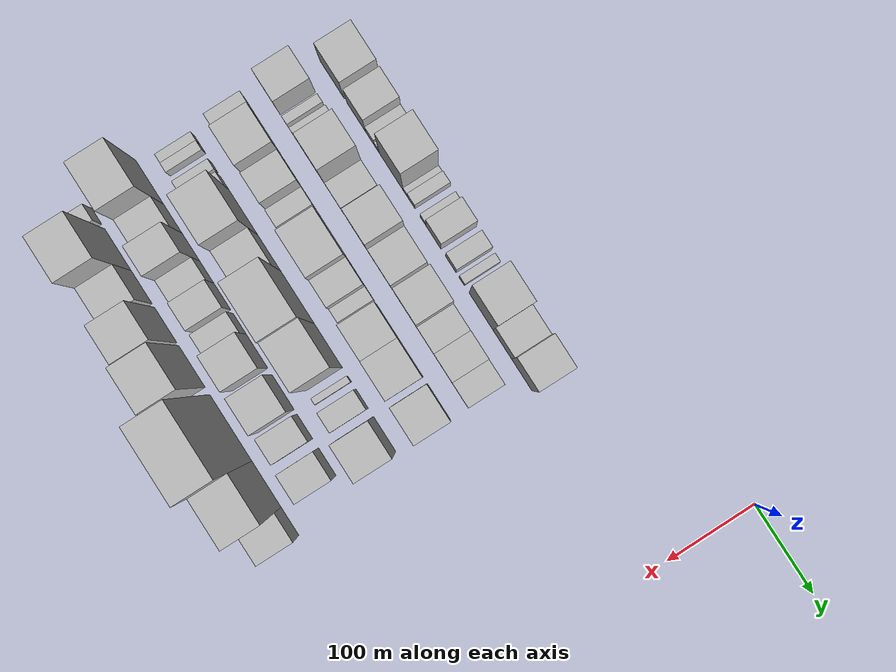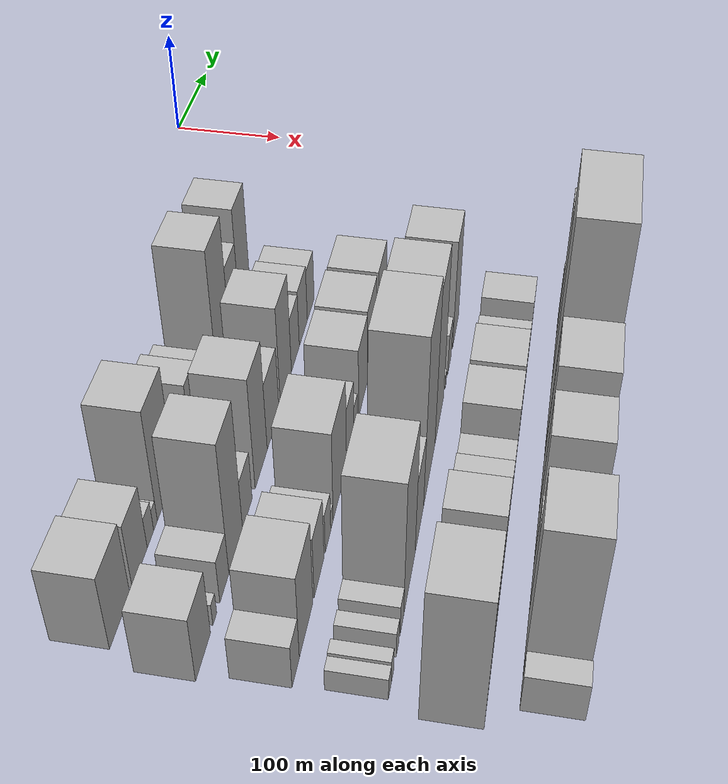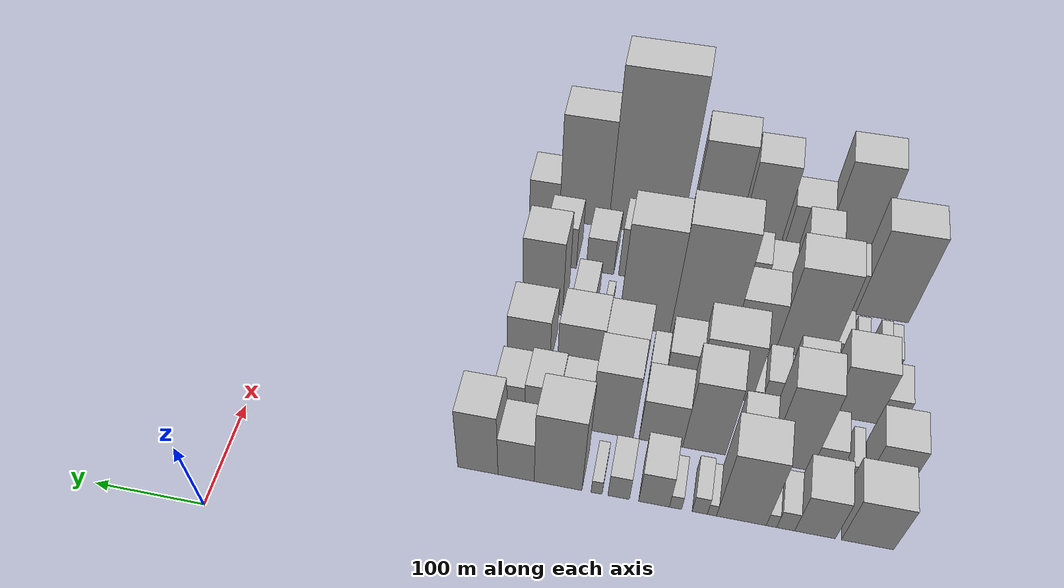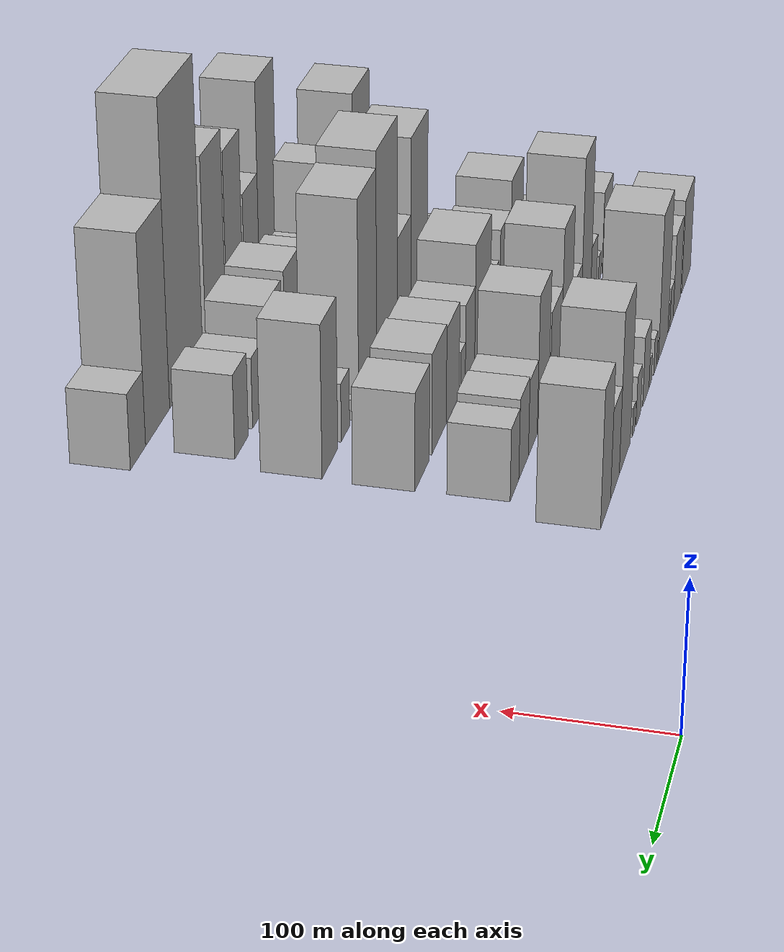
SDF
<sdf version="1.6">
 <world name="default">
  <model name="building_11">
   <static>1</static>
   <pose>100.0000 -558.2118 0 0.000000 0.000000 0.000000</pose>
   <link name="link">
    <pose>0 0 36.00 0 0 0</pose>
    <collision name="collision"><geometry><box><size>40.0000 42.9881 72.0000</size></box></geometry></collision>
    <visual name="visual">
     <cast_shadows>0</cast_shadows>
     <geometry><box><size>40.0000 42.9881 72.0000</size></box></geometry>
     <material>
      <script>
       <uri>model://HANNAS_wall/materials/scripts</uri>
       <uri>model://HANNAS_wall/materials/textures</uri>
       <name>vrc/HANNAS_wall</name>
      </script>
     </material>
    </visual>
   </link>
  </model>
  <model name="building_12">
   <static>1</static>
   <pose>100.0000 -514.8309 0 0.000000 0.000000 0.000000</pose>
   <link name="link">
    <pose>0 0 31.50 0 0 0</pose>
    <collision name="collision"><geometry><box><size>40.0000 33.7736 63.0000</size></box></geometry></collision>
    <visual name="visual">
     <cast_shadows>0</cast_shadows>
     <geometry><box><size>40.0000 33.7736 63.0000</size></box></geometry>
     <material>
      <script>
       <uri>model://HANNAS_wall/materials/scripts</uri>
       <uri>model://HANNAS_wall/materials/textures</uri>
       <name>vrc/HANNAS_wall</name>
      </script>
     </material>
    </visual>
   </link>
  </model>
  <model name="building_13">
   <static>1</static>
   <pose>100.0000 -490.3333 0 0.000000 0.000000 0.000000</pose>
   <link name="link">
    <pose>0 0 15.00 0 0 0</pose>
    <collision name="collision"><geometry><box><size>40.0000 15.2217 30.0000</size></box></geometry></collision>
    <visual name="visual">
     <cast_shadows>0</cast_shadows>
     <geometry><box><size>40.0000 15.2217 30.0000</size></box></geometry>
     <material>
      <script>
       <uri>model://HANNAS_wall/materials/scripts</uri>
       <uri>model://HANNAS_wall/materials/textures</uri>
       <name>vrc/HANNAS_wall</name>
      </script>
     </material>
    </visual>
   </link>
  </model>
  <model name="building_14">
   <static>1</static>
   <pose>100.0000 -478.3659 0 0.000000 0.000000 0.000000</pose>
   <link name="link">
    <pose>0 0 10.50 0 0 0</pose>
    <collision name="collision"><geometry><box><size>40.0000 8.7132 21.0000</size></box></geometry></collision>
    <visual name="visual">
     <cast_shadows>0</cast_shadows>
     <geometry><box><size>40.0000 8.7132 21.0000</size></box></geometry>
     <material>
      <script>
       <uri>model://HANNAS_wall/materials/scripts</uri>
       <uri>model://HANNAS_wall/materials/textures</uri>
       <name>vrc/HANNAS_wall</name>
      </script>
     </material>
    </visual>
   </link>
  </model>
  <model name="building_15">
   <static>1</static>
   <pose>100.0000 -452.8902 0 0.000000 0.000000 0.000000</pose>
   <link name="link">
    <pose>0 0 54.00 0 0 0</pose>
    <collision name="collision"><geometry><box><size>40.0000 42.2380 108.0000</size></box></geometry></collision>
    <visual name="visual">
     <cast_shadows>0</cast_shadows>
     <geometry><box><size>40.0000 42.2380 108.0000</size></box></geometry>
     <material>
      <script>
       <uri>model://HANNAS_wall/materials/scripts</uri>
       <uri>model://HANNAS_wall/materials/textures</uri>
       <name>vrc/HANNAS_wall</name>
      </script>
     </material>
    </visual>
   </link>
  </model>
  <model name="building_16">
   <static>1</static>
   <pose>100.0000 -427.9753 0 0.000000 0.000000 0.000000</pose>
   <link name="link">
    <pose>0 0 9.00 0 0 0</pose>
    <collision name="collision"><geometry><box><size>40.0000 7.5918 18.0000</size></box></geometry></collision>
    <visual name="visual">
     <cast_shadows>0</cast_shadows>
     <geometry><box><size>40.0000 7.5918 18.0000</size></box></geometry>
     <material>
      <script>
       <uri>model://HANNAS_wall/materials/scripts</uri>
       <uri>model://HANNAS_wall/materials/textures</uri>
       <name>vrc/HANNAS_wall</name>
      </script>
     </material>
    </visual>
   </link>
  </model>
  <model name="building_17">
   <static>1</static>
   <pose>100.0000 -417.6089 0 0.000000 0.000000 0.000000</pose>
   <link name="link">
    <pose>0 0 13.50 0 0 0</pose>
    <collision name="collision"><geometry><box><size>40.0000 13.1411 27.0000</size></box></geometry></collision>
    <visual name="visual">
     <cast_shadows>0</cast_shadows>
     <geometry><box><size>40.0000 13.1411 27.0000</size></box></geometry>
     <material>
      <script>
       <uri>model://HANNAS_wall/materials/scripts</uri>
       <uri>model://HANNAS_wall/materials/textures</uri>
       <name>vrc/HANNAS_wall</name>
      </script>
     </material>
    </visual>
   </link>
  </model>
  <model name="building_18">
   <static>1</static>
   <pose>100.0000 -396.8019 0 0.000000 0.000000 0.000000</pose>
   <link name="link">
    <pose>0 0 10.50 0 0 0</pose>
    <collision name="collision"><geometry><box><size>40.0000 10.4727 21.0000</size></box></geometry></collision>
    <visual name="visual">
     <cast_shadows>0</cast_shadows>
     <geometry><box><size>40.0000 10.4727 21.0000</size></box></geometry>
     <material>
      <script>
       <uri>model://HANNAS_wall/materials/scripts</uri>
       <uri>model://HANNAS_wall/materials/textures</uri>
       <name>vrc/HANNAS_wall</name>
      </script>
     </material>
    </visual>
   </link>
  </model>
  <model name="building_19">
   <static>1</static>
   <pose>100.0000 -378.2339 0 0.000000 0.000000 0.000000</pose>
   <link name="link">
    <pose>0 0 25.50 0 0 0</pose>
    <collision name="collision"><geometry><box><size>40.0000 26.6633 51.0000</size></box></geometry></collision>
    <visual name="visual">
     <cast_shadows>0</cast_shadows>
     <geometry><box><size>40.0000 26.6633 51.0000</size></box></geometry>
     <material>
      <script>
       <uri>model://HANNAS_wall/materials/scripts</uri>
       <uri>model://HANNAS_wall/materials/textures</uri>
       <name>vrc/HANNAS_wall</name>
      </script>
     </material>
    </visual>
   </link>
  </model>
  <model name="building_20">
   <static>1</static>
   <pose>100.0000 -347.5182 0 0.000000 0.000000 0.000000</pose>
   <link name="link">
    <pose>0 0 18.00 0 0 0</pose>
    <collision name="collision"><geometry><box><size>40.0000 18.7680 36.0000</size></box></geometry></collision>
    <visual name="visual">
     <cast_shadows>0</cast_shadows>
     <geometry><box><size>40.0000 18.7680 36.0000</size></box></geometry>
     <material>
      <script>
       <uri>model://HANNAS_wall/materials/scripts</uri>
       <uri>model://HANNAS_wall/materials/textures</uri>
       <name>vrc/HANNAS_wall</name>
      </script>
     </material>
    </visual>
   </link>
  </model>
  <model name="building_21">
   <static>1</static>
   <pose>100.0000 -328.2891 0 0.000000 0.000000 0.000000</pose>
   <link name="link">
    <pose>0 0 10.50 0 0 0</pose>
    <collision name="collision"><geometry><box><size>40.0000 9.6902 21.0000</size></box></geometry></collision>
    <visual name="visual">
     <cast_shadows>0</cast_shadows>
     <geometry><box><size>40.0000 9.6902 21.0000</size></box></geometry>
     <material>
      <script>
       <uri>model://HANNAS_wall/materials/scripts</uri>
       <uri>model://HANNAS_wall/materials/textures</uri>
       <name>vrc/HANNAS_wall</name>
      </script>
     </material>
    </visual>
   </link>
  </model>
  <model name="building_22">
   <static>1</static>
   <pose>100.0000 -294.3488 0 0.000000 0.000000 0.000000</pose>
   <link name="link">
    <pose>0 0 57.00 0 0 0</pose>
    <collision name="collision"><geometry><box><size>40.0000 42.1904 114.0000</size></box></geometry></collision>
    <visual name="visual">
     <cast_shadows>0</cast_shadows>
     <geometry><box><size>40.0000 42.1904 114.0000</size></box></geometry>
     <material>
      <script>
       <uri>model://HANNAS_wall/materials/scripts</uri>
       <uri>model://HANNAS_wall/materials/textures</uri>
       <name>vrc/HANNAS_wall</name>
      </script>
     </material>
    </visual>
   </link>
  </model>
  <model name="building_23">
   <static>1</static>
   <pose>100.0000 -257.0880 0 0.000000 0.000000 0.000000</pose>
   <link name="link">
    <pose>0 0 31.50 0 0 0</pose>
    <collision name="collision"><geometry><box><size>40.0000 32.3312 63.0000</size></box></geometry></collision>
    <visual name="visual">
     <cast_shadows>0</cast_shadows>
     <geometry><box><size>40.0000 32.3312 63.0000</size></box></geometry>
     <material>
      <script>
       <uri>model://HANNAS_wall/materials/scripts</uri>
       <uri>model://HANNAS_wall/materials/textures</uri>
       <name>vrc/HANNAS_wall</name>
      </script>
     </material>
    </visual>
   </link>
  </model>
  <model name="building_24">
   <static>1</static>
   <pose>100.0000 -222.8376 0 0.000000 0.000000 0.000000</pose>
   <link name="link">
    <pose>0 0 48.00 0 0 0</pose>
    <collision name="collision"><geometry><box><size>40.0000 36.1696 96.0000</size></box></geometry></collision>
    <visual name="visual">
     <cast_shadows>0</cast_shadows>
     <geometry><box><size>40.0000 36.1696 96.0000</size></box></geometry>
     <material>
      <script>
       <uri>model://HANNAS_wall/materials/scripts</uri>
       <uri>model://HANNAS_wall/materials/textures</uri>
       <name>vrc/HANNAS_wall</name>
      </script>
     </material>
    </visual>
   </link>
  </model>
  <model name="building_66">
   <static>1</static>
   <pose>160.0000 -574.7486 0 0.000000 0.000000 0.000000</pose>
   <link name="link">
    <pose>0 0 31.50 0 0 0</pose>
    <collision name="collision"><geometry><box><size>40.0000 36.1169 63.0000</size></box></geometry></collision>
    <visual name="visual">
     <cast_shadows>0</cast_shadows>
     <geometry><box><size>40.0000 36.1169 63.0000</size></box></geometry>
     <material>
      <script>
       <uri>model://HANNAS_wall/materials/scripts</uri>
       <uri>model://HANNAS_wall/materials/textures</uri>
       <name>vrc/HANNAS_wall</name>
      </script>
     </material>
    </visual>
   </link>
  </model>
  <model name="building_67">
   <static>1</static>
   <pose>160.0000 -545.8588 0 0.000000 0.000000 0.000000</pose>
   <link name="link">
    <pose>0 0 10.50 0 0 0</pose>
    <collision name="collision"><geometry><box><size>40.0000 9.6627 21.0000</size></box></geometry></collision>
    <visual name="visual">
     <cast_shadows>0</cast_shadows>
     <geometry><box><size>40.0000 9.6627 21.0000</size></box></geometry>
     <material>
      <script>
       <uri>model://HANNAS_wall/materials/scripts</uri>
       <uri>model://HANNAS_wall/materials/textures</uri>
       <name>vrc/HANNAS_wall</name>
      </script>
     </material>
    </visual>
   </link>
  </model>
  <model name="building_68">
   <static>1</static>
   <pose>160.0000 -521.0621 0 0.000000 0.000000 0.000000</pose>
   <link name="link">
    <pose>0 0 21.00 0 0 0</pose>
    <collision name="collision"><geometry><box><size>40.0000 23.9307 42.0000</size></box></geometry></collision>
    <visual name="visual">
     <cast_shadows>0</cast_shadows>
     <geometry><box><size>40.0000 23.9307 42.0000</size></box></geometry>
     <material>
      <script>
       <uri>model://HANNAS_wall/materials/scripts</uri>
       <uri>model://HANNAS_wall/materials/textures</uri>
       <name>vrc/HANNAS_wall</name>
      </script>
     </material>
    </visual>
   </link>
  </model>
  <model name="building_69">
   <static>1</static>
   <pose>160.0000 -489.9883 0 0.000000 0.000000 0.000000</pose>
   <link name="link">
    <pose>0 0 63.00 0 0 0</pose>
    <collision name="collision"><geometry><box><size>40.0000 38.2169 126.0000</size></box></geometry></collision>
    <visual name="visual">
     <cast_shadows>0</cast_shadows>
     <geometry><box><size>40.0000 38.2169 126.0000</size></box></geometry>
     <material>
      <script>
       <uri>model://HANNAS_wall/materials/scripts</uri>
       <uri>model://HANNAS_wall/materials/textures</uri>
       <name>vrc/HANNAS_wall</name>
      </script>
     </material>
    </visual>
   </link>
  </model>
  <model name="building_70">
   <static>1</static>
   <pose>160.0000 -456.9344 0 0.000000 0.000000 0.000000</pose>
   <link name="link">
    <pose>0 0 24.00 0 0 0</pose>
    <collision name="collision"><geometry><box><size>40.0000 27.8911 48.0000</size></box></geometry></collision>
    <visual name="visual">
     <cast_shadows>0</cast_shadows>
     <geometry><box><size>40.0000 27.8911 48.0000</size></box></geometry>
     <material>
      <script>
       <uri>model://HANNAS_wall/materials/scripts</uri>
       <uri>model://HANNAS_wall/materials/textures</uri>
       <name>vrc/HANNAS_wall</name>
      </script>
     </material>
    </visual>
   </link>
  </model>
  <model name="building_71">
   <static>1</static>
   <pose>160.0000 -414.9935 0 0.000000 0.000000 0.000000</pose>
   <link name="link">
    <pose>0 0 54.00 0 0 0</pose>
    <collision name="collision"><geometry><box><size>40.0000 37.9908 108.0000</size></box></geometry></collision>
    <visual name="visual">
     <cast_shadows>0</cast_shadows>
     <geometry><box><size>40.0000 37.9908 108.0000</size></box></geometry>
     <material>
      <script>
       <uri>model://HANNAS_wall/materials/scripts</uri>
       <uri>model://HANNAS_wall/materials/textures</uri>
       <name>vrc/HANNAS_wall</name>
      </script>
     </material>
    </visual>
   </link>
  </model>
  <model name="building_72">
   <static>1</static>
   <pose>160.0000 -376.3970 0 0.000000 0.000000 0.000000</pose>
   <link name="link">
    <pose>0 0 33.00 0 0 0</pose>
    <collision name="collision"><geometry><box><size>40.0000 39.2020 66.0000</size></box></geometry></collision>
    <visual name="visual">
     <cast_shadows>0</cast_shadows>
     <geometry><box><size>40.0000 39.2020 66.0000</size></box></geometry>
     <material>
      <script>
       <uri>model://HANNAS_wall/materials/scripts</uri>
       <uri>model://HANNAS_wall/materials/textures</uri>
       <name>vrc/HANNAS_wall</name>
      </script>
     </material>
    </visual>
   </link>
  </model>
  <model name="building_73">
   <static>1</static>
   <pose>160.0000 -332.3566 0 0.000000 0.000000 0.000000</pose>
   <link name="link">
    <pose>0 0 49.50 0 0 0</pose>
    <collision name="collision"><geometry><box><size>40.0000 38.8789 99.0000</size></box></geometry></collision>
    <visual name="visual">
     <cast_shadows>0</cast_shadows>
     <geometry><box><size>40.0000 38.8789 99.0000</size></box></geometry>
     <material>
      <script>
       <uri>model://HANNAS_wall/materials/scripts</uri>
       <uri>model://HANNAS_wall/materials/textures</uri>
       <name>vrc/HANNAS_wall</name>
      </script>
     </material>
    </visual>
   </link>
  </model>
  <model name="building_74">
   <static>1</static>
   <pose>160.0000 -298.2942 0 0.000000 0.000000 0.000000</pose>
   <link name="link">
    <pose>0 0 27.00 0 0 0</pose>
    <collision name="collision"><geometry><box><size>40.0000 29.2459 54.0000</size></box></geometry></collision>
    <visual name="visual">
     <cast_shadows>0</cast_shadows>
     <geometry><box><size>40.0000 29.2459 54.0000</size></box></geometry>
     <material>
      <script>
       <uri>model://HANNAS_wall/materials/scripts</uri>
       <uri>model://HANNAS_wall/materials/textures</uri>
       <name>vrc/HANNAS_wall</name>
      </script>
     </material>
    </visual>
   </link>
  </model>
  <model name="building_75">
   <static>1</static>
   <pose>160.0000 -268.0857 0 0.000000 0.000000 0.000000</pose>
   <link name="link">
    <pose>0 0 28.50 0 0 0</pose>
    <collision name="collision"><geometry><box><size>40.0000 31.1709 57.0000</size></box></geometry></collision>
    <visual name="visual">
     <cast_shadows>0</cast_shadows>
     <geometry><box><size>40.0000 31.1709 57.0000</size></box></geometry>
     <material>
      <script>
       <uri>model://HANNAS_wall/materials/scripts</uri>
       <uri>model://HANNAS_wall/materials/textures</uri>
       <name>vrc/HANNAS_wall</name>
      </script>
     </material>
    </visual>
   </link>
  </model>
  <model name="building_76">
   <static>1</static>
   <pose>160.0000 -238.7552 0 0.000000 0.000000 0.000000</pose>
   <link name="link">
    <pose>0 0 25.50 0 0 0</pose>
    <collision name="collision"><geometry><box><size>40.0000 27.4902 51.0000</size></box></geometry></collision>
    <visual name="visual">
     <cast_shadows>0</cast_shadows>
     <geometry><box><size>40.0000 27.4902 51.0000</size></box></geometry>
     <material>
      <script>
       <uri>model://HANNAS_wall/materials/scripts</uri>
       <uri>model://HANNAS_wall/materials/textures</uri>
       <name>vrc/HANNAS_wall</name>
      </script>
     </material>
    </visual>
   </link>
  </model>
  <model name="building_122">
   <static>1</static>
   <pose>220.0000 -576.0609 0 0.000000 0.000000 0.000000</pose>
   <link name="link">
    <pose>0 0 21.00 0 0 0</pose>
    <collision name="collision"><geometry><box><size>40.0000 21.6346 42.0000</size></box></geometry></collision>
    <visual name="visual">
     <cast_shadows>0</cast_shadows>
     <geometry><box><size>40.0000 21.6346 42.0000</size></box></geometry>
     <material>
      <script>
       <uri>model://HANNAS_wall/materials/scripts</uri>
       <uri>model://HANNAS_wall/materials/textures</uri>
       <name>vrc/HANNAS_wall</name>
      </script>
     </material>
    </visual>
   </link>
  </model>
  <model name="building_123">
   <static>1</static>
   <pose>220.0000 -543.8619 0 0.000000 0.000000 0.000000</pose>
   <link name="link">
    <pose>0 0 40.50 0 0 0</pose>
    <collision name="collision"><geometry><box><size>40.0000 42.7633 81.0000</size></box></geometry></collision>
    <visual name="visual">
     <cast_shadows>0</cast_shadows>
     <geometry><box><size>40.0000 42.7633 81.0000</size></box></geometry>
     <material>
      <script>
       <uri>model://HANNAS_wall/materials/scripts</uri>
       <uri>model://HANNAS_wall/materials/textures</uri>
       <name>vrc/HANNAS_wall</name>
      </script>
     </material>
    </visual>
   </link>
  </model>
  <model name="building_124">
   <static>1</static>
   <pose>220.0000 -501.8426 0 0.000000 0.000000 0.000000</pose>
   <link name="link">
    <pose>0 0 30.00 0 0 0</pose>
    <collision name="collision"><geometry><box><size>40.0000 33.2753 60.0000</size></box></geometry></collision>
    <visual name="visual">
     <cast_shadows>0</cast_shadows>
     <geometry><box><size>40.0000 33.2753 60.0000</size></box></geometry>
     <material>
      <script>
       <uri>model://HANNAS_wall/materials/scripts</uri>
       <uri>model://HANNAS_wall/materials/textures</uri>
       <name>vrc/HANNAS_wall</name>
      </script>
     </material>
    </visual>
   </link>
  </model>
  <model name="building_125">
   <static>1</static>
   <pose>220.0000 -471.3613 0 0.000000 0.000000 0.000000</pose>
   <link name="link">
    <pose>0 0 19.50 0 0 0</pose>
    <collision name="collision"><geometry><box><size>40.0000 19.6873 39.0000</size></box></geometry></collision>
    <visual name="visual">
     <cast_shadows>0</cast_shadows>
     <geometry><box><size>40.0000 19.6873 39.0000</size></box></geometry>
     <material>
      <script>
       <uri>model://HANNAS_wall/materials/scripts</uri>
       <uri>model://HANNAS_wall/materials/textures</uri>
       <name>vrc/HANNAS_wall</name>
      </script>
     </material>
    </visual>
   </link>
  </model>
  <model name="building_126">
   <static>1</static>
   <pose>220.0000 -457.1339 0 0.000000 0.000000 0.000000</pose>
   <link name="link">
    <pose>0 0 9.00 0 0 0</pose>
    <collision name="collision"><geometry><box><size>40.0000 8.7676 18.0000</size></box></geometry></collision>
    <visual name="visual">
     <cast_shadows>0</cast_shadows>
     <geometry><box><size>40.0000 8.7676 18.0000</size></box></geometry>
     <material>
      <script>
       <uri>model://HANNAS_wall/materials/scripts</uri>
       <uri>model://HANNAS_wall/materials/textures</uri>
       <name>vrc/HANNAS_wall</name>
      </script>
     </material>
    </visual>
   </link>
  </model>
  <model name="building_127">
   <static>1</static>
   <pose>220.0000 -427.3146 0 0.000000 0.000000 0.000000</pose>
   <link name="link">
    <pose>0 0 43.50 0 0 0</pose>
    <collision name="collision"><geometry><box><size>40.0000 50.8711 87.0000</size></box></geometry></collision>
    <visual name="visual">
     <cast_shadows>0</cast_shadows>
     <geometry><box><size>40.0000 50.8711 87.0000</size></box></geometry>
     <material>
      <script>
       <uri>model://HANNAS_wall/materials/scripts</uri>
       <uri>model://HANNAS_wall/materials/textures</uri>
       <name>vrc/HANNAS_wall</name>
      </script>
     </material>
    </visual>
   </link>
  </model>
  <model name="building_128">
   <static>1</static>
   <pose>220.0000 -386.9462 0 0.000000 0.000000 0.000000</pose>
   <link name="link">
    <pose>0 0 28.50 0 0 0</pose>
    <collision name="collision"><geometry><box><size>40.0000 29.8656 57.0000</size></box></geometry></collision>
    <visual name="visual">
     <cast_shadows>0</cast_shadows>
     <geometry><box><size>40.0000 29.8656 57.0000</size></box></geometry>
     <material>
      <script>
       <uri>model://HANNAS_wall/materials/scripts</uri>
       <uri>model://HANNAS_wall/materials/textures</uri>
       <name>vrc/HANNAS_wall</name>
      </script>
     </material>
    </visual>
   </link>
  </model>
  <model name="building_129">
   <static>1</static>
   <pose>220.0000 -364.4570 0 0.000000 0.000000 0.000000</pose>
   <link name="link">
    <pose>0 0 15.00 0 0 0</pose>
    <collision name="collision"><geometry><box><size>40.0000 15.1128 30.0000</size></box></geometry></collision>
    <visual name="visual">
     <cast_shadows>0</cast_shadows>
     <geometry><box><size>40.0000 15.1128 30.0000</size></box></geometry>
     <material>
      <script>
       <uri>model://HANNAS_wall/materials/scripts</uri>
       <uri>model://HANNAS_wall/materials/textures</uri>
       <name>vrc/HANNAS_wall</name>
      </script>
     </material>
    </visual>
   </link>
  </model>
  <model name="building_130">
   <static>1</static>
   <pose>220.0000 -333.3176 0 0.000000 0.000000 0.000000</pose>
   <link name="link">
    <pose>0 0 34.50 0 0 0</pose>
    <collision name="collision"><geometry><box><size>40.0000 39.1660 69.0000</size></box></geometry></collision>
    <visual name="visual">
     <cast_shadows>0</cast_shadows>
     <geometry><box><size>40.0000 39.1660 69.0000</size></box></geometry>
     <material>
      <script>
       <uri>model://HANNAS_wall/materials/scripts</uri>
       <uri>model://HANNAS_wall/materials/textures</uri>
       <name>vrc/HANNAS_wall</name>
      </script>
     </material>
    </visual>
   </link>
  </model>
  <model name="building_131">
   <static>1</static>
   <pose>220.0000 -292.5128 0 0.000000 0.000000 0.000000</pose>
   <link name="link">
    <pose>0 0 36.00 0 0 0</pose>
    <collision name="collision"><geometry><box><size>40.0000 42.4435 72.0000</size></box></geometry></collision>
    <visual name="visual">
     <cast_shadows>0</cast_shadows>
     <geometry><box><size>40.0000 42.4435 72.0000</size></box></geometry>
     <material>
      <script>
       <uri>model://HANNAS_wall/materials/scripts</uri>
       <uri>model://HANNAS_wall/materials/textures</uri>
       <name>vrc/HANNAS_wall</name>
      </script>
     </material>
    </visual>
   </link>
  </model>
  <model name="building_132">
   <static>1</static>
   <pose>220.0000 -243.9900 0 0.000000 0.000000 0.000000</pose>
   <link name="link">
    <pose>0 0 34.50 0 0 0</pose>
    <collision name="collision"><geometry><box><size>40.0000 40.6020 69.0000</size></box></geometry></collision>
    <visual name="visual">
     <cast_shadows>0</cast_shadows>
     <geometry><box><size>40.0000 40.6020 69.0000</size></box></geometry>
     <material>
      <script>
       <uri>model://HANNAS_wall/materials/scripts</uri>
       <uri>model://HANNAS_wall/materials/textures</uri>
       <name>vrc/HANNAS_wall</name>
      </script>
     </material>
    </visual>
   </link>
  </model>
  <model name="building_177">
   <static>1</static>
   <pose>280.0000 -579.3779 0 0.000000 0.000000 0.000000</pose>
   <link name="link">
    <pose>0 0 10.50 0 0 0</pose>
    <collision name="collision"><geometry><box><size>40.0000 10.4911 21.0000</size></box></geometry></collision>
    <visual name="visual">
     <cast_shadows>0</cast_shadows>
     <geometry><box><size>40.0000 10.4911 21.0000</size></box></geometry>
     <material>
      <script>
       <uri>model://HANNAS_wall/materials/scripts</uri>
       <uri>model://HANNAS_wall/materials/textures</uri>
       <name>vrc/HANNAS_wall</name>
      </script>
     </material>
    </visual>
   </link>
  </model>
  <model name="building_178">
   <static>1</static>
   <pose>280.0000 -568.8739 0 0.000000 0.000000 0.000000</pose>
   <link name="link">
    <pose>0 0 12.00 0 0 0</pose>
    <collision name="collision"><geometry><box><size>40.0000 10.5170 24.0000</size></box></geometry></collision>
    <visual name="visual">
     <cast_shadows>0</cast_shadows>
     <geometry><box><size>40.0000 10.5170 24.0000</size></box></geometry>
     <material>
      <script>
       <uri>model://HANNAS_wall/materials/scripts</uri>
       <uri>model://HANNAS_wall/materials/textures</uri>
       <name>vrc/HANNAS_wall</name>
      </script>
     </material>
    </visual>
   </link>
  </model>
  <model name="building_179">
   <static>1</static>
   <pose>280.0000 -547.7269 0 0.000000 0.000000 0.000000</pose>
   <link name="link">
    <pose>0 0 12.00 0 0 0</pose>
    <collision name="collision"><geometry><box><size>40.0000 11.7770 24.0000</size></box></geometry></collision>
    <visual name="visual">
     <cast_shadows>0</cast_shadows>
     <geometry><box><size>40.0000 11.7770 24.0000</size></box></geometry>
     <material>
      <script>
       <uri>model://HANNAS_wall/materials/scripts</uri>
       <uri>model://HANNAS_wall/materials/textures</uri>
       <name>vrc/HANNAS_wall</name>
      </script>
     </material>
    </visual>
   </link>
  </model>
  <model name="building_180">
   <static>1</static>
   <pose>280.0000 -530.0136 0 0.000000 0.000000 0.000000</pose>
   <link name="link">
    <pose>0 0 15.00 0 0 0</pose>
    <collision name="collision"><geometry><box><size>40.0000 15.6496 30.0000</size></box></geometry></collision>
    <visual name="visual">
     <cast_shadows>0</cast_shadows>
     <geometry><box><size>40.0000 15.6496 30.0000</size></box></geometry>
     <material>
      <script>
       <uri>model://HANNAS_wall/materials/scripts</uri>
       <uri>model://HANNAS_wall/materials/textures</uri>
       <name>vrc/HANNAS_wall</name>
      </script>
     </material>
    </visual>
   </link>
  </model>
  <model name="building_181">
   <static>1</static>
   <pose>280.0000 -496.3911 0 0.000000 0.000000 0.000000</pose>
   <link name="link">
    <pose>0 0 64.50 0 0 0</pose>
    <collision name="collision"><geometry><box><size>40.0000 51.5954 129.0000</size></box></geometry></collision>
    <visual name="visual">
     <cast_shadows>0</cast_shadows>
     <geometry><box><size>40.0000 51.5954 129.0000</size></box></geometry>
     <material>
      <script>
       <uri>model://HANNAS_wall/materials/scripts</uri>
       <uri>model://HANNAS_wall/materials/textures</uri>
       <name>vrc/HANNAS_wall</name>
      </script>
     </material>
    </visual>
   </link>
  </model>
  <model name="building_182">
   <static>1</static>
   <pose>280.0000 -450.2005 0 0.000000 0.000000 0.000000</pose>
   <link name="link">
    <pose>0 0 36.00 0 0 0</pose>
    <collision name="collision"><geometry><box><size>40.0000 40.7859 72.0000</size></box></geometry></collision>
    <visual name="visual">
     <cast_shadows>0</cast_shadows>
     <geometry><box><size>40.0000 40.7859 72.0000</size></box></geometry>
     <material>
      <script>
       <uri>model://HANNAS_wall/materials/scripts</uri>
       <uri>model://HANNAS_wall/materials/textures</uri>
       <name>vrc/HANNAS_wall</name>
      </script>
     </material>
    </visual>
   </link>
  </model>
  <model name="building_183">
   <static>1</static>
   <pose>280.0000 -400.0042 0 0.000000 0.000000 0.000000</pose>
   <link name="link">
    <pose>0 0 81.00 0 0 0</pose>
    <collision name="collision"><geometry><box><size>40.0000 59.6065 162.0000</size></box></geometry></collision>
    <visual name="visual">
     <cast_shadows>0</cast_shadows>
     <geometry><box><size>40.0000 59.6065 162.0000</size></box></geometry>
     <material>
      <script>
       <uri>model://HANNAS_wall/materials/scripts</uri>
       <uri>model://HANNAS_wall/materials/textures</uri>
       <name>vrc/HANNAS_wall</name>
      </script>
     </material>
    </visual>
   </link>
  </model>
  <model name="building_184">
   <static>1</static>
   <pose>280.0000 -345.2645 0 0.000000 0.000000 0.000000</pose>
   <link name="link">
    <pose>0 0 75.00 0 0 0</pose>
    <collision name="collision"><geometry><box><size>40.0000 49.8730 150.0000</size></box></geometry></collision>
    <visual name="visual">
     <cast_shadows>0</cast_shadows>
     <geometry><box><size>40.0000 49.8730 150.0000</size></box></geometry>
     <material>
      <script>
       <uri>model://HANNAS_wall/materials/scripts</uri>
       <uri>model://HANNAS_wall/materials/textures</uri>
       <name>vrc/HANNAS_wall</name>
      </script>
     </material>
    </visual>
   </link>
  </model>
  <model name="building_185">
   <static>1</static>
   <pose>280.0000 -307.7642 0 0.000000 0.000000 0.000000</pose>
   <link name="link">
    <pose>0 0 7.50 0 0 0</pose>
    <collision name="collision"><geometry><box><size>40.0000 7.1277 15.0000</size></box></geometry></collision>
    <visual name="visual">
     <cast_shadows>0</cast_shadows>
     <geometry><box><size>40.0000 7.1277 15.0000</size></box></geometry>
     <material>
      <script>
       <uri>model://HANNAS_wall/materials/scripts</uri>
       <uri>model://HANNAS_wall/materials/textures</uri>
       <name>vrc/HANNAS_wall</name>
      </script>
     </material>
    </visual>
   </link>
  </model>
  <model name="building_186">
   <static>1</static>
   <pose>280.0000 -285.2788 0 0.000000 0.000000 0.000000</pose>
   <link name="link">
    <pose>0 0 21.00 0 0 0</pose>
    <collision name="collision"><geometry><box><size>40.0000 21.8431 42.0000</size></box></geometry></collision>
    <visual name="visual">
     <cast_shadows>0</cast_shadows>
     <geometry><box><size>40.0000 21.8431 42.0000</size></box></geometry>
     <material>
      <script>
       <uri>model://HANNAS_wall/materials/scripts</uri>
       <uri>model://HANNAS_wall/materials/textures</uri>
       <name>vrc/HANNAS_wall</name>
      </script>
     </material>
    </visual>
   </link>
  </model>
  <model name="building_187">
   <static>1</static>
   <pose>280.0000 -245.5533 0 0.000000 0.000000 0.000000</pose>
   <link name="link">
    <pose>0 0 54.00 0 0 0</pose>
    <collision name="collision"><geometry><box><size>40.0000 39.6078 108.0000</size></box></geometry></collision>
    <visual name="visual">
     <cast_shadows>0</cast_shadows>
     <geometry><box><size>40.0000 39.6078 108.0000</size></box></geometry>
     <material>
      <script>
       <uri>model://HANNAS_wall/materials/scripts</uri>
       <uri>model://HANNAS_wall/materials/textures</uri>
       <name>vrc/HANNAS_wall</name>
      </script>
     </material>
    </visual>
   </link>
  </model>
  <model name="building_230">
   <static>1</static>
   <pose>340.0000 -569.4708 0 0.000000 0.000000 0.000000</pose>
   <link name="link">
    <pose>0 0 63.00 0 0 0</pose>
    <collision name="collision"><geometry><box><size>40.0000 50.3926 126.0000</size></box></geometry></collision>
    <visual name="visual">
     <cast_shadows>0</cast_shadows>
     <geometry><box><size>40.0000 50.3926 126.0000</size></box></geometry>
     <material>
      <script>
       <uri>model://HANNAS_wall/materials/scripts</uri>
       <uri>model://HANNAS_wall/materials/textures</uri>
       <name>vrc/HANNAS_wall</name>
      </script>
     </material>
    </visual>
   </link>
  </model>
  <model name="building_231">
   <static>1</static>
   <pose>340.0000 -527.8419 0 0.000000 0.000000 0.000000</pose>
   <link name="link">
    <pose>0 0 30.00 0 0 0</pose>
    <collision name="collision"><geometry><box><size>40.0000 32.8651 60.0000</size></box></geometry></collision>
    <visual name="visual">
     <cast_shadows>0</cast_shadows>
     <geometry><box><size>40.0000 32.8651 60.0000</size></box></geometry>
     <material>
      <script>
       <uri>model://HANNAS_wall/materials/scripts</uri>
       <uri>model://HANNAS_wall/materials/textures</uri>
       <name>vrc/HANNAS_wall</name>
      </script>
     </material>
    </visual>
   </link>
  </model>
  <model name="building_232">
   <static>1</static>
   <pose>340.0000 -495.5004 0 0.000000 0.000000 0.000000</pose>
   <link name="link">
    <pose>0 0 49.50 0 0 0</pose>
    <collision name="collision"><geometry><box><size>40.0000 31.8179 99.0000</size></box></geometry></collision>
    <visual name="visual">
     <cast_shadows>0</cast_shadows>
     <geometry><box><size>40.0000 31.8179 99.0000</size></box></geometry>
     <material>
      <script>
       <uri>model://HANNAS_wall/materials/scripts</uri>
       <uri>model://HANNAS_wall/materials/textures</uri>
       <name>vrc/HANNAS_wall</name>
      </script>
     </material>
    </visual>
   </link>
  </model>
  <model name="building_233">
   <static>1</static>
   <pose>340.0000 -466.9998 0 0.000000 0.000000 0.000000</pose>
   <link name="link">
    <pose>0 0 22.50 0 0 0</pose>
    <collision name="collision"><geometry><box><size>40.0000 25.1833 45.0000</size></box></geometry></collision>
    <visual name="visual">
     <cast_shadows>0</cast_shadows>
     <geometry><box><size>40.0000 25.1833 45.0000</size></box></geometry>
     <material>
      <script>
       <uri>model://HANNAS_wall/materials/scripts</uri>
       <uri>model://HANNAS_wall/materials/textures</uri>
       <name>vrc/HANNAS_wall</name>
      </script>
     </material>
    </visual>
   </link>
  </model>
  <model name="building_234">
   <static>1</static>
   <pose>340.0000 -439.2403 0 0.000000 0.000000 0.000000</pose>
   <link name="link">
    <pose>0 0 27.00 0 0 0</pose>
    <collision name="collision"><geometry><box><size>40.0000 30.3358 54.0000</size></box></geometry></collision>
    <visual name="visual">
     <cast_shadows>0</cast_shadows>
     <geometry><box><size>40.0000 30.3358 54.0000</size></box></geometry>
     <material>
      <script>
       <uri>model://HANNAS_wall/materials/scripts</uri>
       <uri>model://HANNAS_wall/materials/textures</uri>
       <name>vrc/HANNAS_wall</name>
      </script>
     </material>
    </visual>
   </link>
  </model>
  <model name="building_235">
   <static>1</static>
   <pose>340.0000 -408.3772 0 0.000000 0.000000 0.000000</pose>
   <link name="link">
    <pose>0 0 22.50 0 0 0</pose>
    <collision name="collision"><geometry><box><size>40.0000 23.3903 45.0000</size></box></geometry></collision>
    <visual name="visual">
     <cast_shadows>0</cast_shadows>
     <geometry><box><size>40.0000 23.3903 45.0000</size></box></geometry>
     <material>
      <script>
       <uri>model://HANNAS_wall/materials/scripts</uri>
       <uri>model://HANNAS_wall/materials/textures</uri>
       <name>vrc/HANNAS_wall</name>
      </script>
     </material>
    </visual>
   </link>
  </model>
  <model name="building_236">
   <static>1</static>
   <pose>340.0000 -377.3782 0 0.000000 0.000000 0.000000</pose>
   <link name="link">
    <pose>0 0 37.50 0 0 0</pose>
    <collision name="collision"><geometry><box><size>40.0000 38.6078 75.0000</size></box></geometry></collision>
    <visual name="visual">
     <cast_shadows>0</cast_shadows>
     <geometry><box><size>40.0000 38.6078 75.0000</size></box></geometry>
     <material>
      <script>
       <uri>model://HANNAS_wall/materials/scripts</uri>
       <uri>model://HANNAS_wall/materials/textures</uri>
       <name>vrc/HANNAS_wall</name>
      </script>
     </material>
    </visual>
   </link>
  </model>
  <model name="building_237">
   <static>1</static>
   <pose>340.0000 -331.2438 0 0.000000 0.000000 0.000000</pose>
   <link name="link">
    <pose>0 0 36.00 0 0 0</pose>
    <collision name="collision"><geometry><box><size>40.0000 39.6609 72.0000</size></box></geometry></collision>
    <visual name="visual">
     <cast_shadows>0</cast_shadows>
     <geometry><box><size>40.0000 39.6609 72.0000</size></box></geometry>
     <material>
      <script>
       <uri>model://HANNAS_wall/materials/scripts</uri>
       <uri>model://HANNAS_wall/materials/textures</uri>
       <name>vrc/HANNAS_wall</name>
      </script>
     </material>
    </visual>
   </link>
  </model>
  <model name="building_238">
   <static>1</static>
   <pose>340.0000 -292.4407 0 0.000000 0.000000 0.000000</pose>
   <link name="link">
    <pose>0 0 25.50 0 0 0</pose>
    <collision name="collision"><geometry><box><size>40.0000 27.9452 51.0000</size></box></geometry></collision>
    <visual name="visual">
     <cast_shadows>0</cast_shadows>
     <geometry><box><size>40.0000 27.9452 51.0000</size></box></geometry>
     <material>
      <script>
       <uri>model://HANNAS_wall/materials/scripts</uri>
       <uri>model://HANNAS_wall/materials/textures</uri>
       <name>vrc/HANNAS_wall</name>
      </script>
     </material>
    </visual>
   </link>
  </model>
  <model name="building_239">
   <static>1</static>
   <pose>340.0000 -252.8162 0 0.000000 0.000000 0.000000</pose>
   <link name="link">
    <pose>0 0 30.00 0 0 0</pose>
    <collision name="collision"><geometry><box><size>40.0000 31.3039 60.0000</size></box></geometry></collision>
    <visual name="visual">
     <cast_shadows>0</cast_shadows>
     <geometry><box><size>40.0000 31.3039 60.0000</size></box></geometry>
     <material>
      <script>
       <uri>model://HANNAS_wall/materials/scripts</uri>
       <uri>model://HANNAS_wall/materials/textures</uri>
       <name>vrc/HANNAS_wall</name>
      </script>
     </material>
    </visual>
   </link>
  </model>
  <model name="building_284">
   <static>1</static>
   <pose>400.0000 -568.8831 0 0.000000 0.000000 0.000000</pose>
   <link name="link">
    <pose>0 0 18.00 0 0 0</pose>
    <collision name="collision"><geometry><box><size>40.0000 18.2830 36.0000</size></box></geometry></collision>
    <visual name="visual">
     <cast_shadows>0</cast_shadows>
     <geometry><box><size>40.0000 18.2830 36.0000</size></box></geometry>
     <material>
      <script>
       <uri>model://HANNAS_wall/materials/scripts</uri>
       <uri>model://HANNAS_wall/materials/textures</uri>
       <name>vrc/HANNAS_wall</name>
      </script>
     </material>
    </visual>
   </link>
  </model>
  <model name="building_285">
   <static>1</static>
   <pose>400.0000 -531.0758 0 0.000000 0.000000 0.000000</pose>
   <link name="link">
    <pose>0 0 72.00 0 0 0</pose>
    <collision name="collision"><geometry><box><size>40.0000 47.3315 144.0000</size></box></geometry></collision>
    <visual name="visual">
     <cast_shadows>0</cast_shadows>
     <geometry><box><size>40.0000 47.3315 144.0000</size></box></geometry>
     <material>
      <script>
       <uri>model://HANNAS_wall/materials/scripts</uri>
       <uri>model://HANNAS_wall/materials/textures</uri>
       <name>vrc/HANNAS_wall</name>
      </script>
     </material>
    </visual>
   </link>
  </model>
  <model name="building_286">
   <static>1</static>
   <pose>400.0000 -488.5025 0 0.000000 0.000000 0.000000</pose>
   <link name="link">
    <pose>0 0 37.50 0 0 0</pose>
    <collision name="collision"><geometry><box><size>40.0000 37.8151 75.0000</size></box></geometry></collision>
    <visual name="visual">
     <cast_shadows>0</cast_shadows>
     <geometry><box><size>40.0000 37.8151 75.0000</size></box></geometry>
     <material>
      <script>
       <uri>model://HANNAS_wall/materials/scripts</uri>
       <uri>model://HANNAS_wall/materials/textures</uri>
       <name>vrc/HANNAS_wall</name>
      </script>
     </material>
    </visual>
   </link>
  </model>
  <model name="building_287">
   <static>1</static>
   <pose>400.0000 -445.5040 0 0.000000 0.000000 0.000000</pose>
   <link name="link">
    <pose>0 0 63.00 0 0 0</pose>
    <collision name="collision"><geometry><box><size>40.0000 40.1820 126.0000</size></box></geometry></collision>
    <visual name="visual">
     <cast_shadows>0</cast_shadows>
     <geometry><box><size>40.0000 40.1820 126.0000</size></box></geometry>
     <material>
      <script>
       <uri>model://HANNAS_wall/materials/scripts</uri>
       <uri>model://HANNAS_wall/materials/textures</uri>
       <name>vrc/HANNAS_wall</name>
      </script>
     </material>
    </visual>
   </link>
  </model>
  <model name="building_288">
   <static>1</static>
   <pose>400.0000 -398.7068 0 0.000000 0.000000 0.000000</pose>
   <link name="link">
    <pose>0 0 72.00 0 0 0</pose>
    <collision name="collision"><geometry><box><size>40.0000 47.4123 144.0000</size></box></geometry></collision>
    <visual name="visual">
     <cast_shadows>0</cast_shadows>
     <geometry><box><size>40.0000 47.4123 144.0000</size></box></geometry>
     <material>
      <script>
       <uri>model://HANNAS_wall/materials/scripts</uri>
       <uri>model://HANNAS_wall/materials/textures</uri>
       <name>vrc/HANNAS_wall</name>
      </script>
     </material>
    </visual>
   </link>
  </model>
  <model name="building_289">
   <static>1</static>
   <pose>400.0000 -329.4402 0 0.000000 0.000000 0.000000</pose>
   <link name="link">
    <pose>0 0 109.50 0 0 0</pose>
    <collision name="collision"><geometry><box><size>40.0000 75.1209 219.0000</size></box></geometry></collision>
    <visual name="visual">
     <cast_shadows>0</cast_shadows>
     <geometry><box><size>40.0000 75.1209 219.0000</size></box></geometry>
     <material>
      <script>
       <uri>model://HANNAS_wall/materials/scripts</uri>
       <uri>model://HANNAS_wall/materials/textures</uri>
       <name>vrc/HANNAS_wall</name>
      </script>
     </material>
    </visual>
   </link>
  </model>
  <model name="building_290">
   <static>1</static>
   <pose>400.0000 -266.0801 0 0.000000 0.000000 0.000000</pose>
   <link name="link">
    <pose>0 0 75.00 0 0 0</pose>
    <collision name="collision"><geometry><box><size>40.0000 51.5993 150.0000</size></box></geometry></collision>
    <visual name="visual">
     <cast_shadows>0</cast_shadows>
     <geometry><box><size>40.0000 51.5993 150.0000</size></box></geometry>
     <material>
      <script>
       <uri>model://HANNAS_wall/materials/scripts</uri>
       <uri>model://HANNAS_wall/materials/textures</uri>
       <name>vrc/HANNAS_wall</name>
      </script>
     </material>
    </visual>
   </link>
  </model>
  <model name="building_291">
   <static>1</static>
   <pose>400.0000 -224.4144 0 0.000000 0.000000 0.000000</pose>
   <link name="link">
    <pose>0 0 27.00 0 0 0</pose>
    <collision name="collision"><geometry><box><size>40.0000 31.7322 54.0000</size></box></geometry></collision>
    <visual name="visual">
     <cast_shadows>0</cast_shadows>
     <geometry><box><size>40.0000 31.7322 54.0000</size></box></geometry>
     <material>
      <script>
       <uri>model://HANNAS_wall/materials/scripts</uri>
       <uri>model://HANNAS_wall/materials/textures</uri>
       <name>vrc/HANNAS_wall</name>
      </script>
     </material>
    </visual>
   </link>
  </model>
 </world>
</sdf>
